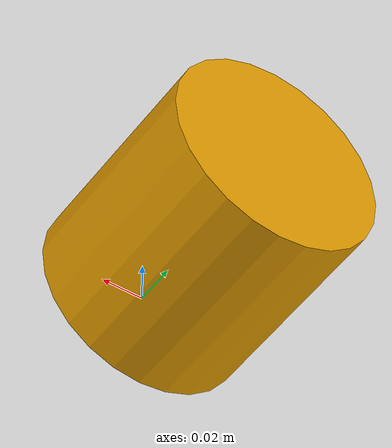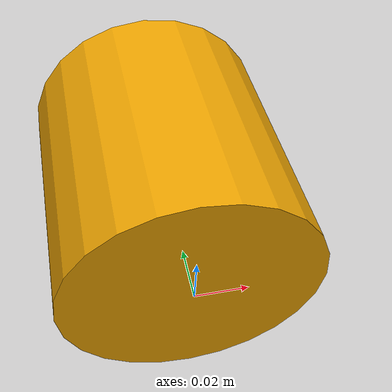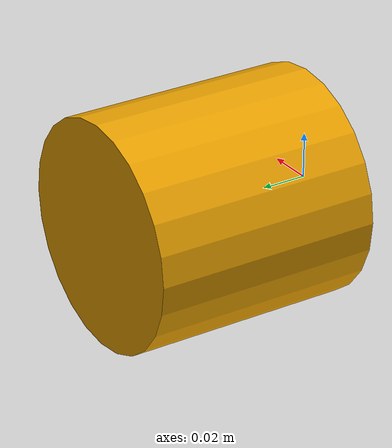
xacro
<?xml version="1.0"?>
<robot xmlns:xacro="http://ros.org/wiki/xacro">
    <xacro:property name="tool_width" value="0.1"/>
    <xacro:property name="tool_height" value="0.1"/>
    <xacro:property name="tool_radius" value="${tool_width/2}"/>
    <xacro:property name="tool_origin_xyz" value="0 ${tool_height/2} 0"/>
    <xacro:property name="tool_origin_rpy" value="${pi / 2} 0 0"/>

    <link name="tool_link">
      <visual>
        <origin
                xyz="${tool_origin_xyz}"
                rpy="${tool_origin_rpy}" />
        <geometry>
          <cylinder length="${tool_height}" radius="${tool_radius}"/>
        </geometry>
      </visual>
      <collision>
        <origin
                xyz="${tool_origin_xyz}"
                rpy="${tool_origin_rpy}" />
        <geometry>
         <cylinder length="${tool_height}" radius="${tool_radius}"/>
       </geometry>
      </collision>
    </link>
</robot>
